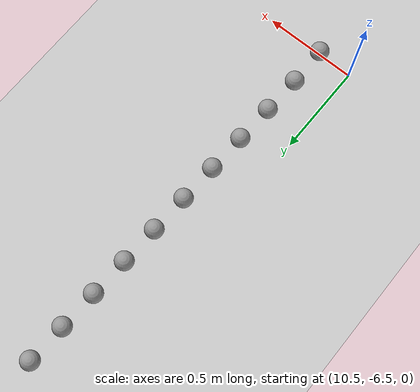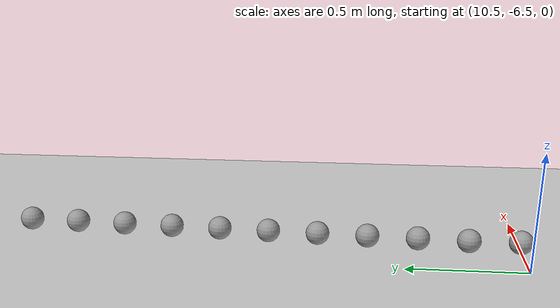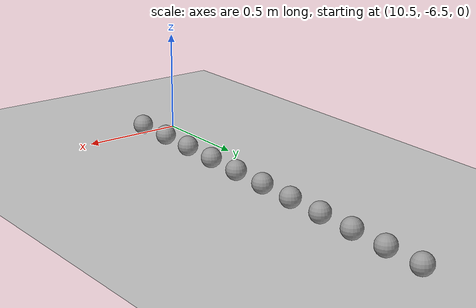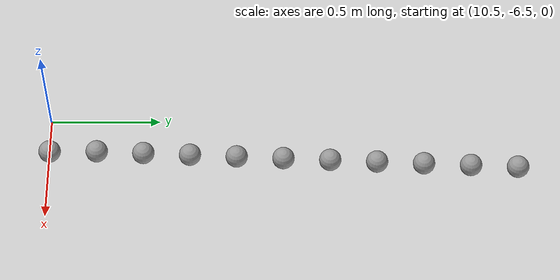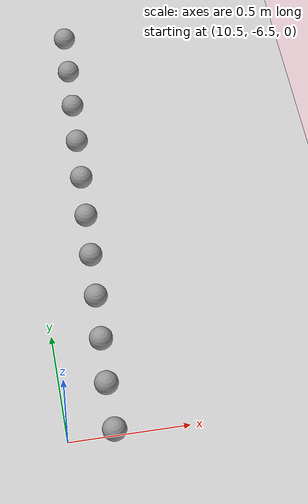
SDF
<sdf version="1.6">
 <world name="default">
  <model name="ground_plane">
   <static>1</static>
   <link name="link">
    <collision name="collision">
     <geometry><plane><normal>0 0 1</normal><size>100 100</size></plane></geometry>
     <surface><friction><ode><mu>100</mu><mu2>50</mu2></ode></friction></surface>
    </collision>
    <visual name="visual">
     <cast_shadows>0</cast_shadows>
     <geometry><plane><normal>0 0 1</normal><size>100 100</size></plane></geometry>
     <material>
      <script><uri>file://media/materials/scripts/gazebo.material</uri><name>Gazebo/Grey</name></script>
     </material>
    </visual>
   </link>
  </model>
  <model name="unit_sphere_0_461">
   <pose>10.780000 -4.372000 0.050000 0 -0 0</pose>
   <link name="link">
    <inertial>
     <mass>1</mass>
     <inertia><ixx>0.1</ixx><ixy>0</ixy><ixz>0</ixz><iyy>0.1</iyy><iyz>0</iyz><izz>0.1</izz></inertia>
    </inertial>
    <collision name="collision"><geometry><sphere><radius>0.050000</radius></sphere></geometry></collision>
    <visual name="visual">
     <geometry><sphere><radius>0.050000</radius></sphere></geometry>
     <material>
      <script><name>Gazebo/Grey</name><uri>file://media/materials/scripts/gazebo.material</uri></script>
     </material>
    </visual>
   </link>
  </model>
  <model name="unit_sphere_0_462">
   <pose>10.770000 -4.584000 0.050000 0 -0 0</pose>
   <link name="link">
    <inertial>
     <mass>1</mass>
     <inertia><ixx>0.1</ixx><ixy>0</ixy><ixz>0</ixz><iyy>0.1</iyy><iyz>0</iyz><izz>0.1</izz></inertia>
    </inertial>
    <collision name="collision"><geometry><sphere><radius>0.050000</radius></sphere></geometry></collision>
    <visual name="visual">
     <geometry><sphere><radius>0.050000</radius></sphere></geometry>
     <material>
      <script><name>Gazebo/Grey</name><uri>file://media/materials/scripts/gazebo.material</uri></script>
     </material>
    </visual>
   </link>
  </model>
  <model name="unit_sphere_0_463">
   <pose>10.760000 -4.796000 0.050000 0 -0 0</pose>
   <link name="link">
    <inertial>
     <mass>1</mass>
     <inertia><ixx>0.1</ixx><ixy>0</ixy><ixz>0</ixz><iyy>0.1</iyy><iyz>0</iyz><izz>0.1</izz></inertia>
    </inertial>
    <collision name="collision"><geometry><sphere><radius>0.050000</radius></sphere></geometry></collision>
    <visual name="visual">
     <geometry><sphere><radius>0.050000</radius></sphere></geometry>
     <material>
      <script><name>Gazebo/Grey</name><uri>file://media/materials/scripts/gazebo.material</uri></script>
     </material>
    </visual>
   </link>
  </model>
  <model name="unit_sphere_0_464">
   <pose>10.750000 -5.008000 0.050000 0 -0 0</pose>
   <link name="link">
    <inertial>
     <mass>1</mass>
     <inertia><ixx>0.1</ixx><ixy>0</ixy><ixz>0</ixz><iyy>0.1</iyy><iyz>0</iyz><izz>0.1</izz></inertia>
    </inertial>
    <collision name="collision"><geometry><sphere><radius>0.050000</radius></sphere></geometry></collision>
    <visual name="visual">
     <geometry><sphere><radius>0.050000</radius></sphere></geometry>
     <material>
      <script><name>Gazebo/Grey</name><uri>file://media/materials/scripts/gazebo.material</uri></script>
     </material>
    </visual>
   </link>
  </model>
  <model name="unit_sphere_0_465">
   <pose>10.740000 -5.220000 0.050000 0 -0 0</pose>
   <link name="link">
    <inertial>
     <mass>1</mass>
     <inertia><ixx>0.1</ixx><ixy>0</ixy><ixz>0</ixz><iyy>0.1</iyy><iyz>0</iyz><izz>0.1</izz></inertia>
    </inertial>
    <collision name="collision"><geometry><sphere><radius>0.050000</radius></sphere></geometry></collision>
    <visual name="visual">
     <geometry><sphere><radius>0.050000</radius></sphere></geometry>
     <material>
      <script><name>Gazebo/Grey</name><uri>file://media/materials/scripts/gazebo.material</uri></script>
     </material>
    </visual>
   </link>
  </model>
  <model name="unit_sphere_0_466">
   <pose>10.730000 -5.432000 0.050000 0 -0 0</pose>
   <link name="link">
    <inertial>
     <mass>1</mass>
     <inertia><ixx>0.1</ixx><ixy>0</ixy><ixz>0</ixz><iyy>0.1</iyy><iyz>0</iyz><izz>0.1</izz></inertia>
    </inertial>
    <collision name="collision"><geometry><sphere><radius>0.050000</radius></sphere></geometry></collision>
    <visual name="visual">
     <geometry><sphere><radius>0.050000</radius></sphere></geometry>
     <material>
      <script><name>Gazebo/Grey</name><uri>file://media/materials/scripts/gazebo.material</uri></script>
     </material>
    </visual>
   </link>
  </model>
  <model name="unit_sphere_0_467">
   <pose>10.720000 -5.644000 0.050000 0 -0 0</pose>
   <link name="link">
    <inertial>
     <mass>1</mass>
     <inertia><ixx>0.1</ixx><ixy>0</ixy><ixz>0</ixz><iyy>0.1</iyy><iyz>0</iyz><izz>0.1</izz></inertia>
    </inertial>
    <collision name="collision"><geometry><sphere><radius>0.050000</radius></sphere></geometry></collision>
    <visual name="visual">
     <geometry><sphere><radius>0.050000</radius></sphere></geometry>
     <material>
      <script><name>Gazebo/Grey</name><uri>file://media/materials/scripts/gazebo.material</uri></script>
     </material>
    </visual>
   </link>
  </model>
  <model name="unit_sphere_0_468">
   <pose>10.710000 -5.856000 0.050000 0 -0 0</pose>
   <link name="link">
    <inertial>
     <mass>1</mass>
     <inertia><ixx>0.1</ixx><ixy>0</ixy><ixz>0</ixz><iyy>0.1</iyy><iyz>0</iyz><izz>0.1</izz></inertia>
    </inertial>
    <collision name="collision"><geometry><sphere><radius>0.050000</radius></sphere></geometry></collision>
    <visual name="visual">
     <geometry><sphere><radius>0.050000</radius></sphere></geometry>
     <material>
      <script><name>Gazebo/Grey</name><uri>file://media/materials/scripts/gazebo.material</uri></script>
     </material>
    </visual>
   </link>
  </model>
  <model name="unit_sphere_0_469">
   <pose>10.700000 -6.068000 0.050000 0 -0 0</pose>
   <link name="link">
    <inertial>
     <mass>1</mass>
     <inertia><ixx>0.1</ixx><ixy>0</ixy><ixz>0</ixz><iyy>0.1</iyy><iyz>0</iyz><izz>0.1</izz></inertia>
    </inertial>
    <collision name="collision"><geometry><sphere><radius>0.050000</radius></sphere></geometry></collision>
    <visual name="visual">
     <geometry><sphere><radius>0.050000</radius></sphere></geometry>
     <material>
      <script><name>Gazebo/Grey</name><uri>file://media/materials/scripts/gazebo.material</uri></script>
     </material>
    </visual>
   </link>
  </model>
  <model name="unit_sphere_0_470">
   <pose>10.690000 -6.280000 0.050000 0 -0 0</pose>
   <link name="link">
    <inertial>
     <mass>1</mass>
     <inertia><ixx>0.1</ixx><ixy>0</ixy><ixz>0</ixz><iyy>0.1</iyy><iyz>0</iyz><izz>0.1</izz></inertia>
    </inertial>
    <collision name="collision"><geometry><sphere><radius>0.050000</radius></sphere></geometry></collision>
    <visual name="visual">
     <geometry><sphere><radius>0.050000</radius></sphere></geometry>
     <material>
      <script><name>Gazebo/Grey</name><uri>file://media/materials/scripts/gazebo.material</uri></script>
     </material>
    </visual>
   </link>
  </model>
  <model name="unit_sphere_0_471">
   <pose>10.690000 -6.494000 0.050000 0 -0 0</pose>
   <link name="link">
    <inertial>
     <mass>1</mass>
     <inertia><ixx>0.1</ixx><ixy>0</ixy><ixz>0</ixz><iyy>0.1</iyy><iyz>0</iyz><izz>0.1</izz></inertia>
    </inertial>
    <collision name="collision"><geometry><sphere><radius>0.050000</radius></sphere></geometry></collision>
    <visual name="visual">
     <geometry><sphere><radius>0.050000</radius></sphere></geometry>
     <material>
      <script><name>Gazebo/Grey</name><uri>file://media/materials/scripts/gazebo.material</uri></script>
     </material>
    </visual>
   </link>
  </model>
 </world>
</sdf>
